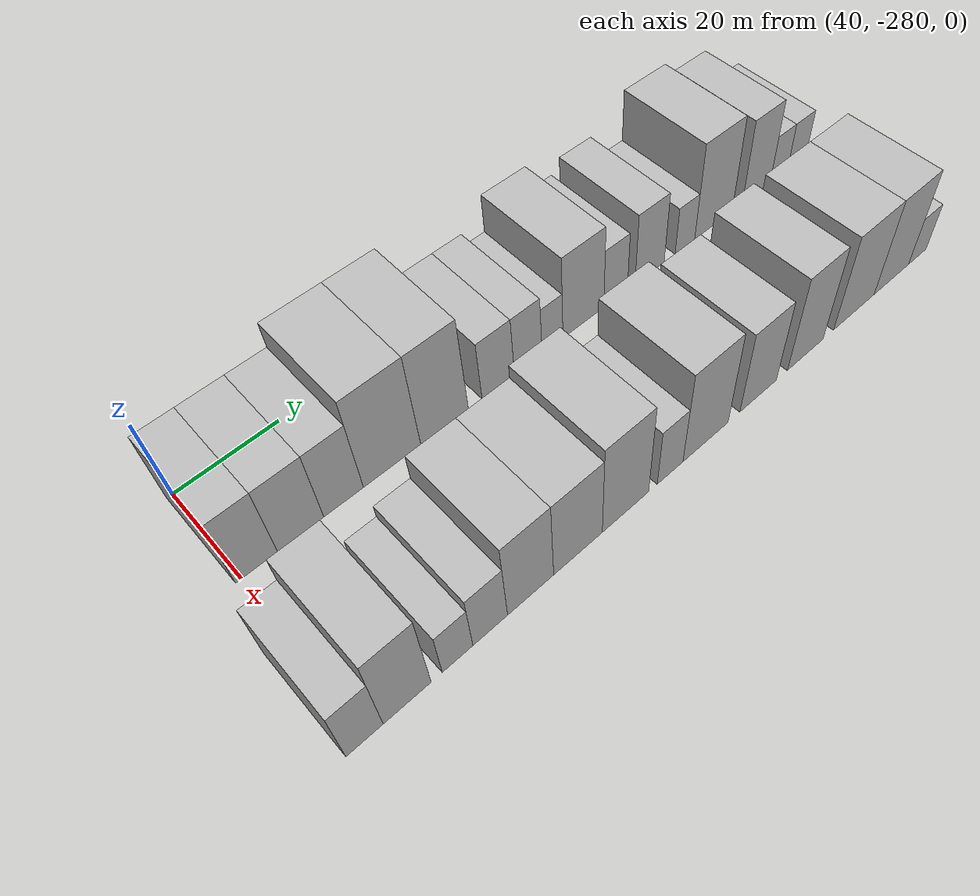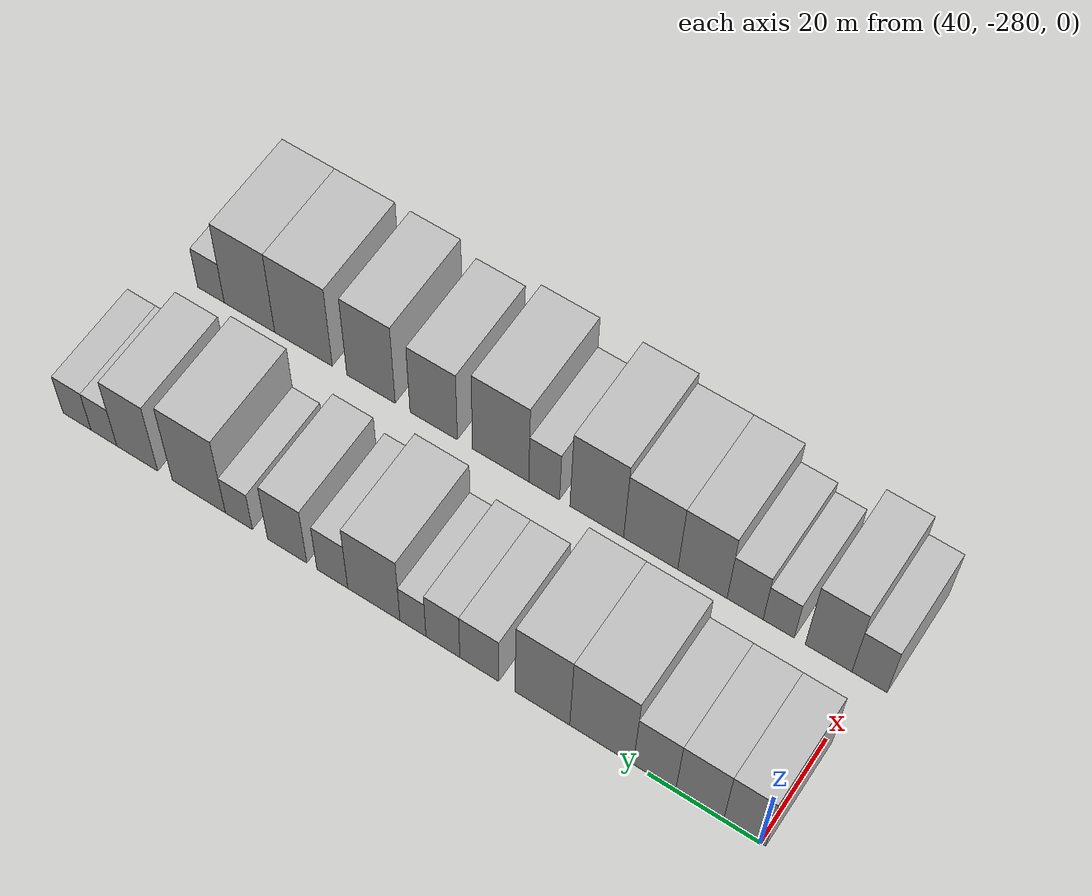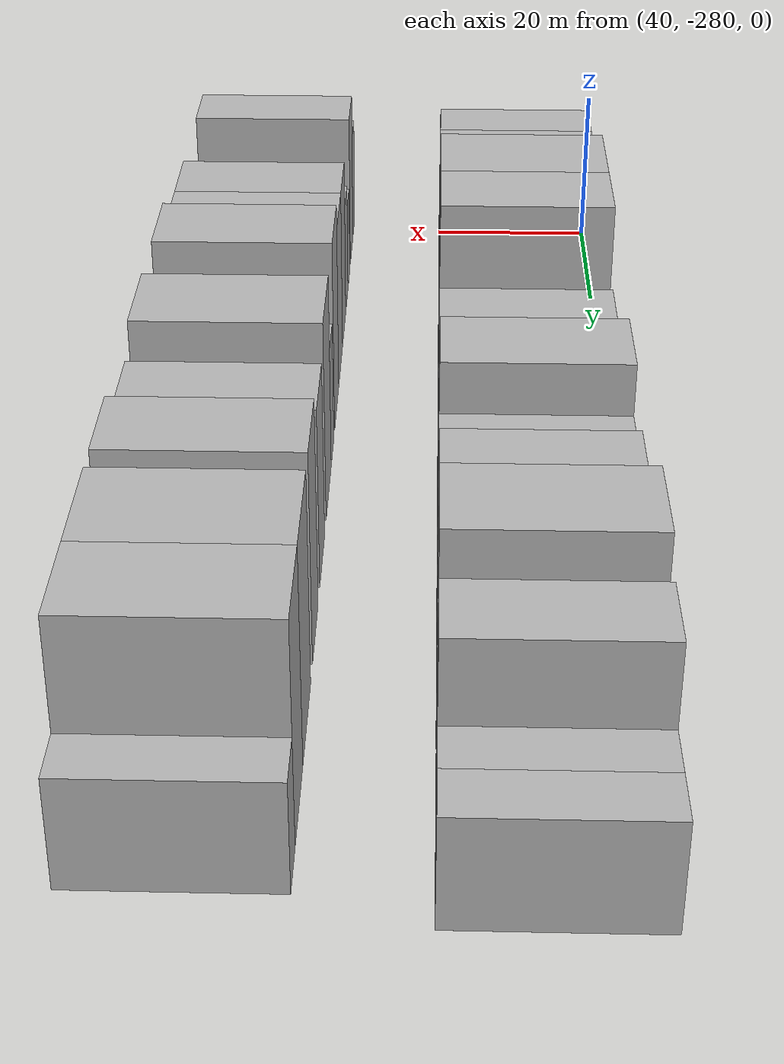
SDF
<sdf version="1.6">
 <world name="default">
  <model name="building_1">
   <static>1</static>
   <pose>50.0000 -277.2556 0 0.000000 0.000000 0.000000</pose>
   <link name="link">
    <pose>0 0 9.00 0 0 0</pose>
    <collision name="collision"><geometry><box><size>20.0000 7.4887 18.0000</size></box></geometry></collision>
    <visual name="visual">
     <cast_shadows>0</cast_shadows>
     <geometry><box><size>20.0000 7.4887 18.0000</size></box></geometry>
     <material>
      <script>
       <uri>model://HANNAS_wall/materials/scripts</uri>
       <uri>model://HANNAS_wall/materials/textures</uri>
       <name>vrc/HANNAS_wall</name>
      </script>
     </material>
    </visual>
   </link>
  </model>
  <model name="building_2">
   <static>1</static>
   <pose>50.0000 -269.2363 0 0.000000 0.000000 0.000000</pose>
   <link name="link">
    <pose>0 0 9.00 0 0 0</pose>
    <collision name="collision"><geometry><box><size>20.0000 8.5500 18.0000</size></box></geometry></collision>
    <visual name="visual">
     <cast_shadows>0</cast_shadows>
     <geometry><box><size>20.0000 8.5500 18.0000</size></box></geometry>
     <material>
      <script>
       <uri>model://HANNAS_wall/materials/scripts</uri>
       <uri>model://HANNAS_wall/materials/textures</uri>
       <name>vrc/HANNAS_wall</name>
      </script>
     </material>
    </visual>
   </link>
  </model>
  <model name="building_3">
   <static>1</static>
   <pose>50.0000 -261.1356 0 0.000000 0.000000 0.000000</pose>
   <link name="link">
    <pose>0 0 9.00 0 0 0</pose>
    <collision name="collision"><geometry><box><size>20.0000 7.6514 18.0000</size></box></geometry></collision>
    <visual name="visual">
     <cast_shadows>0</cast_shadows>
     <geometry><box><size>20.0000 7.6514 18.0000</size></box></geometry>
     <material>
      <script>
       <uri>model://HANNAS_wall/materials/scripts</uri>
       <uri>model://HANNAS_wall/materials/textures</uri>
       <name>vrc/HANNAS_wall</name>
      </script>
     </material>
    </visual>
   </link>
  </model>
  <model name="building_4">
   <static>1</static>
   <pose>50.0000 -251.5059 0 0.000000 0.000000 0.000000</pose>
   <link name="link">
    <pose>0 0 12.00 0 0 0</pose>
    <collision name="collision"><geometry><box><size>20.0000 11.6080 24.0000</size></box></geometry></collision>
    <visual name="visual">
     <cast_shadows>0</cast_shadows>
     <geometry><box><size>20.0000 11.6080 24.0000</size></box></geometry>
     <material>
      <script>
       <uri>model://HANNAS_wall/materials/scripts</uri>
       <uri>model://HANNAS_wall/materials/textures</uri>
       <name>vrc/HANNAS_wall</name>
      </script>
     </material>
    </visual>
   </link>
  </model>
  <model name="building_5">
   <static>1</static>
   <pose>50.0000 -240.6111 0 0.000000 0.000000 0.000000</pose>
   <link name="link">
    <pose>0 0 12.00 0 0 0</pose>
    <collision name="collision"><geometry><box><size>20.0000 10.1817 24.0000</size></box></geometry></collision>
    <visual name="visual">
     <cast_shadows>0</cast_shadows>
     <geometry><box><size>20.0000 10.1817 24.0000</size></box></geometry>
     <material>
      <script>
       <uri>model://HANNAS_wall/materials/scripts</uri>
       <uri>model://HANNAS_wall/materials/textures</uri>
       <name>vrc/HANNAS_wall</name>
      </script>
     </material>
    </visual>
   </link>
  </model>
  <model name="building_6">
   <static>1</static>
   <pose>50.0000 -228.8419 0 0.000000 0.000000 0.000000</pose>
   <link name="link">
    <pose>0 0 7.50 0 0 0</pose>
    <collision name="collision"><geometry><box><size>20.0000 7.3566 15.0000</size></box></geometry></collision>
    <visual name="visual">
     <cast_shadows>0</cast_shadows>
     <geometry><box><size>20.0000 7.3566 15.0000</size></box></geometry>
     <material>
      <script>
       <uri>model://HANNAS_wall/materials/scripts</uri>
       <uri>model://HANNAS_wall/materials/textures</uri>
       <name>vrc/HANNAS_wall</name>
      </script>
     </material>
    </visual>
   </link>
  </model>
  <model name="building_7">
   <static>1</static>
   <pose>50.0000 -221.9343 0 0.000000 0.000000 0.000000</pose>
   <link name="link">
    <pose>0 0 7.50 0 0 0</pose>
    <collision name="collision"><geometry><box><size>20.0000 6.4588 15.0000</size></box></geometry></collision>
    <visual name="visual">
     <cast_shadows>0</cast_shadows>
     <geometry><box><size>20.0000 6.4588 15.0000</size></box></geometry>
     <material>
      <script>
       <uri>model://HANNAS_wall/materials/scripts</uri>
       <uri>model://HANNAS_wall/materials/textures</uri>
       <name>vrc/HANNAS_wall</name>
      </script>
     </material>
    </visual>
   </link>
  </model>
  <model name="building_8">
   <static>1</static>
   <pose>50.0000 -216.2119 0 0.000000 0.000000 0.000000</pose>
   <link name="link">
    <pose>0 0 6.00 0 0 0</pose>
    <collision name="collision"><geometry><box><size>20.0000 4.9858 12.0000</size></box></geometry></collision>
    <visual name="visual">
     <cast_shadows>0</cast_shadows>
     <geometry><box><size>20.0000 4.9858 12.0000</size></box></geometry>
     <material>
      <script>
       <uri>model://HANNAS_wall/materials/scripts</uri>
       <uri>model://HANNAS_wall/materials/textures</uri>
       <name>vrc/HANNAS_wall</name>
      </script>
     </material>
    </visual>
   </link>
  </model>
  <model name="building_9">
   <static>1</static>
   <pose>50.0000 -208.6545 0 0.000000 0.000000 0.000000</pose>
   <link name="link">
    <pose>0 0 10.50 0 0 0</pose>
    <collision name="collision"><geometry><box><size>20.0000 10.1291 21.0000</size></box></geometry></collision>
    <visual name="visual">
     <cast_shadows>0</cast_shadows>
     <geometry><box><size>20.0000 10.1291 21.0000</size></box></geometry>
     <material>
      <script>
       <uri>model://HANNAS_wall/materials/scripts</uri>
       <uri>model://HANNAS_wall/materials/textures</uri>
       <name>vrc/HANNAS_wall</name>
      </script>
     </material>
    </visual>
   </link>
  </model>
  <model name="building_10">
   <static>1</static>
   <pose>50.0000 -200.5649 0 0.000000 0.000000 0.000000</pose>
   <link name="link">
    <pose>0 0 7.50 0 0 0</pose>
    <collision name="collision"><geometry><box><size>20.0000 6.0502 15.0000</size></box></geometry></collision>
    <visual name="visual">
     <cast_shadows>0</cast_shadows>
     <geometry><box><size>20.0000 6.0502 15.0000</size></box></geometry>
     <material>
      <script>
       <uri>model://HANNAS_wall/materials/scripts</uri>
       <uri>model://HANNAS_wall/materials/textures</uri>
       <name>vrc/HANNAS_wall</name>
      </script>
     </material>
    </visual>
   </link>
  </model>
  <model name="building_11">
   <static>1</static>
   <pose>50.0000 -191.6332 0 0.000000 0.000000 0.000000</pose>
   <link name="link">
    <pose>0 0 9.00 0 0 0</pose>
    <collision name="collision"><geometry><box><size>20.0000 7.8131 18.0000</size></box></geometry></collision>
    <visual name="visual">
     <cast_shadows>0</cast_shadows>
     <geometry><box><size>20.0000 7.8131 18.0000</size></box></geometry>
     <material>
      <script>
       <uri>model://HANNAS_wall/materials/scripts</uri>
       <uri>model://HANNAS_wall/materials/textures</uri>
       <name>vrc/HANNAS_wall</name>
      </script>
     </material>
    </visual>
   </link>
  </model>
  <model name="building_12">
   <static>1</static>
   <pose>50.0000 -182.0046 0 0.000000 0.000000 0.000000</pose>
   <link name="link">
    <pose>0 0 6.00 0 0 0</pose>
    <collision name="collision"><geometry><box><size>20.0000 5.4442 12.0000</size></box></geometry></collision>
    <visual name="visual">
     <cast_shadows>0</cast_shadows>
     <geometry><box><size>20.0000 5.4442 12.0000</size></box></geometry>
     <material>
      <script>
       <uri>model://HANNAS_wall/materials/scripts</uri>
       <uri>model://HANNAS_wall/materials/textures</uri>
       <name>vrc/HANNAS_wall</name>
      </script>
     </material>
    </visual>
   </link>
  </model>
  <model name="building_13">
   <static>1</static>
   <pose>50.0000 -173.8829 0 0.000000 0.000000 0.000000</pose>
   <link name="link">
    <pose>0 0 12.00 0 0 0</pose>
    <collision name="collision"><geometry><box><size>20.0000 10.7992 24.0000</size></box></geometry></collision>
    <visual name="visual">
     <cast_shadows>0</cast_shadows>
     <geometry><box><size>20.0000 10.7992 24.0000</size></box></geometry>
     <material>
      <script>
       <uri>model://HANNAS_wall/materials/scripts</uri>
       <uri>model://HANNAS_wall/materials/textures</uri>
       <name>vrc/HANNAS_wall</name>
      </script>
     </material>
    </visual>
   </link>
  </model>
  <model name="building_14">
   <static>1</static>
   <pose>50.0000 -161.2518 0 0.000000 0.000000 0.000000</pose>
   <link name="link">
    <pose>0 0 10.50 0 0 0</pose>
    <collision name="collision"><geometry><box><size>20.0000 8.4629 21.0000</size></box></geometry></collision>
    <visual name="visual">
     <cast_shadows>0</cast_shadows>
     <geometry><box><size>20.0000 8.4629 21.0000</size></box></geometry>
     <material>
      <script>
       <uri>model://HANNAS_wall/materials/scripts</uri>
       <uri>model://HANNAS_wall/materials/textures</uri>
       <name>vrc/HANNAS_wall</name>
      </script>
     </material>
    </visual>
   </link>
  </model>
  <model name="building_15">
   <static>1</static>
   <pose>50.0000 -154.3283 0 0.000000 0.000000 0.000000</pose>
   <link name="link">
    <pose>0 0 6.00 0 0 0</pose>
    <collision name="collision"><geometry><box><size>20.0000 5.3842 12.0000</size></box></geometry></collision>
    <visual name="visual">
     <cast_shadows>0</cast_shadows>
     <geometry><box><size>20.0000 5.3842 12.0000</size></box></geometry>
     <material>
      <script>
       <uri>model://HANNAS_wall/materials/scripts</uri>
       <uri>model://HANNAS_wall/materials/textures</uri>
       <name>vrc/HANNAS_wall</name>
      </script>
     </material>
    </visual>
   </link>
  </model>
  <model name="building_16">
   <static>1</static>
   <pose>50.0000 -148.7081 0 0.000000 0.000000 0.000000</pose>
   <link name="link">
    <pose>0 0 6.00 0 0 0</pose>
    <collision name="collision"><geometry><box><size>20.0000 5.8562 12.0000</size></box></geometry></collision>
    <visual name="visual">
     <cast_shadows>0</cast_shadows>
     <geometry><box><size>20.0000 5.8562 12.0000</size></box></geometry>
     <material>
      <script>
       <uri>model://HANNAS_wall/materials/scripts</uri>
       <uri>model://HANNAS_wall/materials/textures</uri>
       <name>vrc/HANNAS_wall</name>
      </script>
     </material>
    </visual>
   </link>
  </model>
  <model name="building_64">
   <static>1</static>
   <pose>82.0000 -280.8417 0 0.000000 0.000000 0.000000</pose>
   <link name="link">
    <pose>0 0 7.50 0 0 0</pose>
    <collision name="collision"><geometry><box><size>20.0000 6.3165 15.0000</size></box></geometry></collision>
    <visual name="visual">
     <cast_shadows>0</cast_shadows>
     <geometry><box><size>20.0000 6.3165 15.0000</size></box></geometry>
     <material>
      <script>
       <uri>model://HANNAS_wall/materials/scripts</uri>
       <uri>model://HANNAS_wall/materials/textures</uri>
       <name>vrc/HANNAS_wall</name>
      </script>
     </material>
    </visual>
   </link>
  </model>
  <model name="building_65">
   <static>1</static>
   <pose>82.0000 -273.4562 0 0.000000 0.000000 0.000000</pose>
   <link name="link">
    <pose>0 0 10.50 0 0 0</pose>
    <collision name="collision"><geometry><box><size>20.0000 8.4546 21.0000</size></box></geometry></collision>
    <visual name="visual">
     <cast_shadows>0</cast_shadows>
     <geometry><box><size>20.0000 8.4546 21.0000</size></box></geometry>
     <material>
      <script>
       <uri>model://HANNAS_wall/materials/scripts</uri>
       <uri>model://HANNAS_wall/materials/textures</uri>
       <name>vrc/HANNAS_wall</name>
      </script>
     </material>
    </visual>
   </link>
  </model>
  <model name="building_66">
   <static>1</static>
   <pose>82.0000 -264.3822 0 0.000000 0.000000 0.000000</pose>
   <link name="link">
    <pose>0 0 6.00 0 0 0</pose>
    <collision name="collision"><geometry><box><size>20.0000 5.6933 12.0000</size></box></geometry></collision>
    <visual name="visual">
     <cast_shadows>0</cast_shadows>
     <geometry><box><size>20.0000 5.6933 12.0000</size></box></geometry>
     <material>
      <script>
       <uri>model://HANNAS_wall/materials/scripts</uri>
       <uri>model://HANNAS_wall/materials/textures</uri>
       <name>vrc/HANNAS_wall</name>
      </script>
     </material>
    </visual>
   </link>
  </model>
  <model name="building_67">
   <static>1</static>
   <pose>82.0000 -258.2056 0 0.000000 0.000000 0.000000</pose>
   <link name="link">
    <pose>0 0 7.50 0 0 0</pose>
    <collision name="collision"><geometry><box><size>20.0000 6.6600 15.0000</size></box></geometry></collision>
    <visual name="visual">
     <cast_shadows>0</cast_shadows>
     <geometry><box><size>20.0000 6.6600 15.0000</size></box></geometry>
     <material>
      <script>
       <uri>model://HANNAS_wall/materials/scripts</uri>
       <uri>model://HANNAS_wall/materials/textures</uri>
       <name>vrc/HANNAS_wall</name>
      </script>
     </material>
    </visual>
   </link>
  </model>
  <model name="building_68">
   <static>1</static>
   <pose>82.0000 -250.2666 0 0.000000 0.000000 0.000000</pose>
   <link name="link">
    <pose>0 0 10.50 0 0 0</pose>
    <collision name="collision"><geometry><box><size>20.0000 9.2180 21.0000</size></box></geometry></collision>
    <visual name="visual">
     <cast_shadows>0</cast_shadows>
     <geometry><box><size>20.0000 9.2180 21.0000</size></box></geometry>
     <material>
      <script>
       <uri>model://HANNAS_wall/materials/scripts</uri>
       <uri>model://HANNAS_wall/materials/textures</uri>
       <name>vrc/HANNAS_wall</name>
      </script>
     </material>
    </visual>
   </link>
  </model>
  <model name="building_69">
   <static>1</static>
   <pose>82.0000 -240.5264 0 0.000000 0.000000 0.000000</pose>
   <link name="link">
    <pose>0 0 10.50 0 0 0</pose>
    <collision name="collision"><geometry><box><size>20.0000 10.2624 21.0000</size></box></geometry></collision>
    <visual name="visual">
     <cast_shadows>0</cast_shadows>
     <geometry><box><size>20.0000 10.2624 21.0000</size></box></geometry>
     <material>
      <script>
       <uri>model://HANNAS_wall/materials/scripts</uri>
       <uri>model://HANNAS_wall/materials/textures</uri>
       <name>vrc/HANNAS_wall</name>
      </script>
     </material>
    </visual>
   </link>
  </model>
  <model name="building_70">
   <static>1</static>
   <pose>82.0000 -230.2431 0 0.000000 0.000000 0.000000</pose>
   <link name="link">
    <pose>0 0 12.00 0 0 0</pose>
    <collision name="collision"><geometry><box><size>20.0000 10.3042 24.0000</size></box></geometry></collision>
    <visual name="visual">
     <cast_shadows>0</cast_shadows>
     <geometry><box><size>20.0000 10.3042 24.0000</size></box></geometry>
     <material>
      <script>
       <uri>model://HANNAS_wall/materials/scripts</uri>
       <uri>model://HANNAS_wall/materials/textures</uri>
       <name>vrc/HANNAS_wall</name>
      </script>
     </material>
    </visual>
   </link>
  </model>
  <model name="building_71">
   <static>1</static>
   <pose>82.0000 -220.0906 0 0.000000 0.000000 0.000000</pose>
   <link name="link">
    <pose>0 0 7.50 0 0 0</pose>
    <collision name="collision"><geometry><box><size>20.0000 6.0007 15.0000</size></box></geometry></collision>
    <visual name="visual">
     <cast_shadows>0</cast_shadows>
     <geometry><box><size>20.0000 6.0007 15.0000</size></box></geometry>
     <material>
      <script>
       <uri>model://HANNAS_wall/materials/scripts</uri>
       <uri>model://HANNAS_wall/materials/textures</uri>
       <name>vrc/HANNAS_wall</name>
      </script>
     </material>
    </visual>
   </link>
  </model>
  <model name="building_72">
   <static>1</static>
   <pose>82.0000 -211.5653 0 0.000000 0.000000 0.000000</pose>
   <link name="link">
    <pose>0 0 12.00 0 0 0</pose>
    <collision name="collision"><geometry><box><size>20.0000 11.0500 24.0000</size></box></geometry></collision>
    <visual name="visual">
     <cast_shadows>0</cast_shadows>
     <geometry><box><size>20.0000 11.0500 24.0000</size></box></geometry>
     <material>
      <script>
       <uri>model://HANNAS_wall/materials/scripts</uri>
       <uri>model://HANNAS_wall/materials/textures</uri>
       <name>vrc/HANNAS_wall</name>
      </script>
     </material>
    </visual>
   </link>
  </model>
  <model name="building_73">
   <static>1</static>
   <pose>82.0000 -198.3012 0 0.000000 0.000000 0.000000</pose>
   <link name="link">
    <pose>0 0 10.50 0 0 0</pose>
    <collision name="collision"><geometry><box><size>20.0000 9.4782 21.0000</size></box></geometry></collision>
    <visual name="visual">
     <cast_shadows>0</cast_shadows>
     <geometry><box><size>20.0000 9.4782 21.0000</size></box></geometry>
     <material>
      <script>
       <uri>model://HANNAS_wall/materials/scripts</uri>
       <uri>model://HANNAS_wall/materials/textures</uri>
       <name>vrc/HANNAS_wall</name>
      </script>
     </material>
    </visual>
   </link>
  </model>
  <model name="building_74">
   <static>1</static>
   <pose>82.0000 -185.6444 0 0.000000 0.000000 0.000000</pose>
   <link name="link">
    <pose>0 0 12.00 0 0 0</pose>
    <collision name="collision"><geometry><box><size>20.0000 9.8352 24.0000</size></box></geometry></collision>
    <visual name="visual">
     <cast_shadows>0</cast_shadows>
     <geometry><box><size>20.0000 9.8352 24.0000</size></box></geometry>
     <material>
      <script>
       <uri>model://HANNAS_wall/materials/scripts</uri>
       <uri>model://HANNAS_wall/materials/textures</uri>
       <name>vrc/HANNAS_wall</name>
      </script>
     </material>
    </visual>
   </link>
  </model>
  <model name="building_75">
   <static>1</static>
   <pose>82.0000 -171.7548 0 0.000000 0.000000 0.000000</pose>
   <link name="link">
    <pose>0 0 12.00 0 0 0</pose>
    <collision name="collision"><geometry><box><size>20.0000 11.9441 24.0000</size></box></geometry></collision>
    <visual name="visual">
     <cast_shadows>0</cast_shadows>
     <geometry><box><size>20.0000 11.9441 24.0000</size></box></geometry>
     <material>
      <script>
       <uri>model://HANNAS_wall/materials/scripts</uri>
       <uri>model://HANNAS_wall/materials/textures</uri>
       <name>vrc/HANNAS_wall</name>
      </script>
     </material>
    </visual>
   </link>
  </model>
  <model name="building_76">
   <static>1</static>
   <pose>82.0000 -160.4772 0 0.000000 0.000000 0.000000</pose>
   <link name="link">
    <pose>0 0 12.00 0 0 0</pose>
    <collision name="collision"><geometry><box><size>20.0000 10.6111 24.0000</size></box></geometry></collision>
    <visual name="visual">
     <cast_shadows>0</cast_shadows>
     <geometry><box><size>20.0000 10.6111 24.0000</size></box></geometry>
     <material>
      <script>
       <uri>model://HANNAS_wall/materials/scripts</uri>
       <uri>model://HANNAS_wall/materials/textures</uri>
       <name>vrc/HANNAS_wall</name>
      </script>
     </material>
    </visual>
   </link>
  </model>
  <model name="building_77">
   <static>1</static>
   <pose>82.0000 -152.3550 0 0.000000 0.000000 0.000000</pose>
   <link name="link">
    <pose>0 0 6.00 0 0 0</pose>
    <collision name="collision"><geometry><box><size>20.0000 5.6334 12.0000</size></box></geometry></collision>
    <visual name="visual">
     <cast_shadows>0</cast_shadows>
     <geometry><box><size>20.0000 5.6334 12.0000</size></box></geometry>
     <material>
      <script>
       <uri>model://HANNAS_wall/materials/scripts</uri>
       <uri>model://HANNAS_wall/materials/textures</uri>
       <name>vrc/HANNAS_wall</name>
      </script>
     </material>
    </visual>
   </link>
  </model>
 </world>
</sdf>
